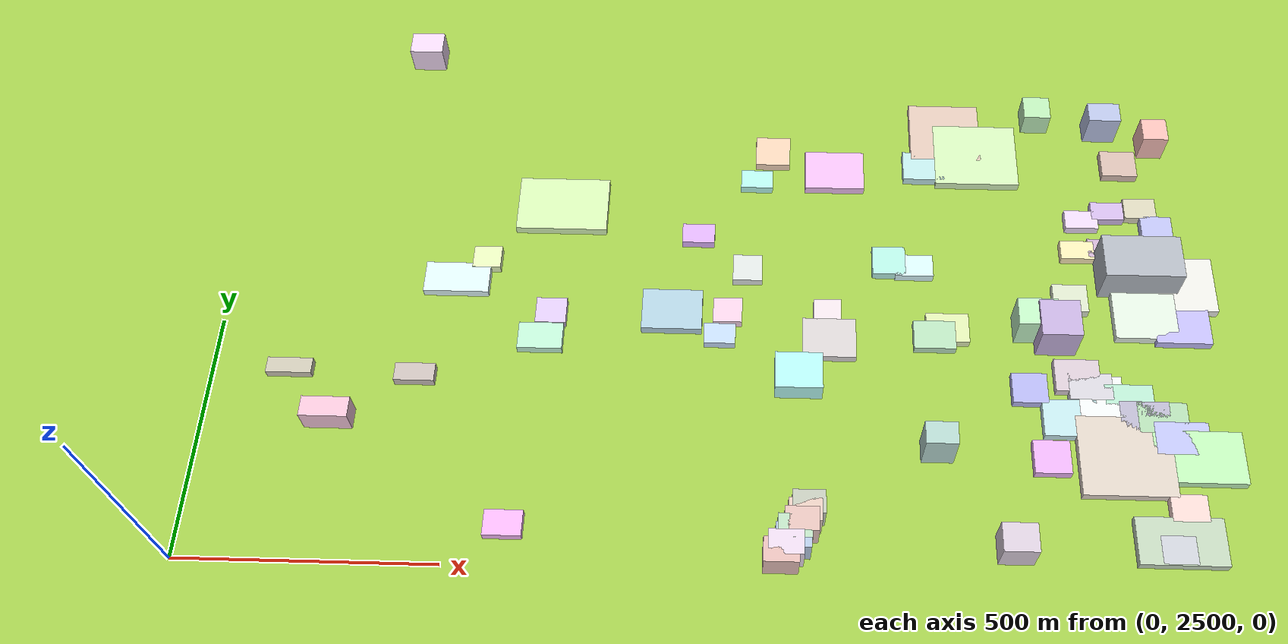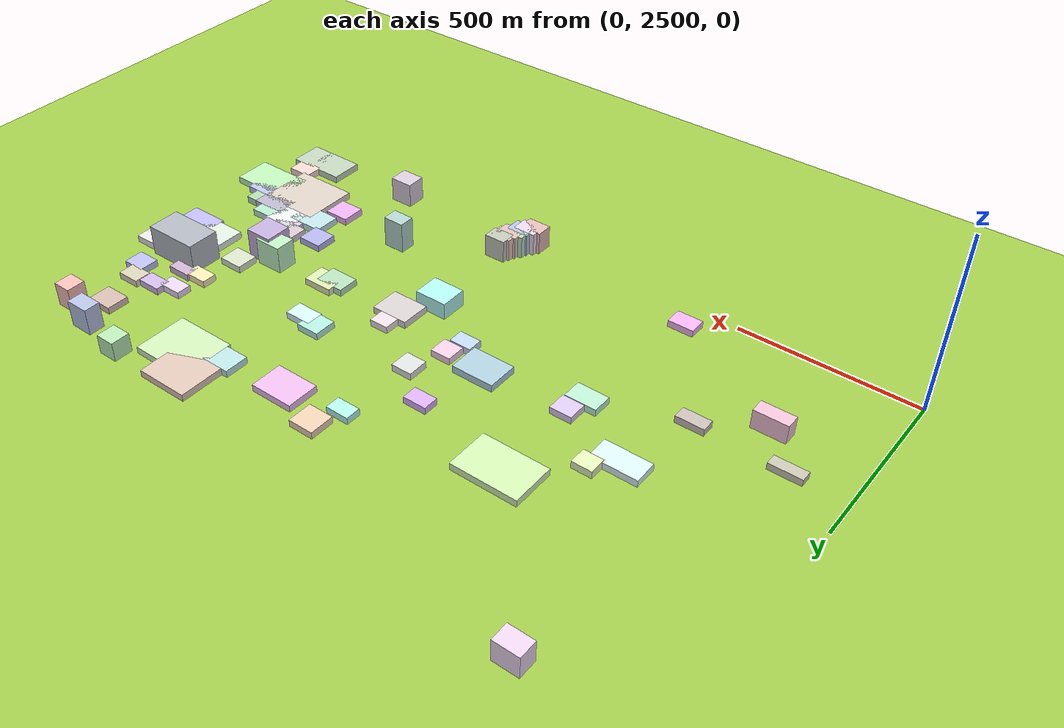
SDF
<sdf version="1.9">
 <world name="city_map">
  <model name="ground_plane">
   <static>1</static>
   <link name="link">
    <collision name="collision">
     <geometry><plane><normal>0 0 1</normal><size>11000 11000</size></plane></geometry>
    </collision>
    <visual name="visual">
     <geometry><plane><normal>0 0 1</normal><size>11000 11000</size></plane></geometry>
     <material>
      <ambient>0.551 0.712 0.210 1</ambient>
      <diffuse>0.651 0.812 0.310 1</diffuse>
      <specular>0.1 0.1 0.05 1</specular>
     </material>
    </visual>
   </link>
  </model>
  <model name="building_296393266">
   <static>1</static>
   <pose>1785.0916881172025 2744.9662166609846 10.0 0 0 0</pose>
   <link name="link">
    <collision name="collision">
     <geometry><box><size>181.3217300226623 163.61400000019444 20</size></box></geometry>
    </collision>
    <visual name="visual">
     <cast_shadows>false</cast_shadows>
     <geometry><box><size>181.3217300226623 163.61400000019444 20</size></box></geometry>
     <material>
      <ambient>0.780 0.733 0.687 1</ambient>
      <diffuse>0.880 0.833 0.787 1</diffuse>
      <specular>0.264 0.250 0.236 1</specular>
      <emissive>0.01 0.01 0.01 1</emissive>
     </material>
    </visual>
   </link>
  </model>
  <model name="building_847208884">
   <static>1</static>
   <pose>1540.7432542702056 3440.817177242946 10.0 0 0 0</pose>
   <link name="link">
    <collision name="collision">
     <geometry><box><size>176.17920000033394 151.10614218380107 20</size></box></geometry>
    </collision>
    <visual name="visual">
     <cast_shadows>false</cast_shadows>
     <geometry><box><size>176.17920000033394 151.10614218380107 20</size></box></geometry>
     <material>
      <ambient>0.738 0.854 0.643 1</ambient>
      <diffuse>0.838 0.954 0.743 1</diffuse>
      <specular>0.251 0.286 0.223 1</specular>
      <emissive>0.01 0.01 0.01 1</emissive>
     </material>
    </visual>
   </link>
  </model>
  <model name="building_385283953">
   <static>1</static>
   <pose>665.1022493785597 3291.2420328187886 10.0 0 0 0</pose>
   <link name="link">
    <collision name="collision">
     <geometry><box><size>189.01028402953102 125.65199999981758 20</size></box></geometry>
    </collision>
    <visual name="visual">
     <cast_shadows>false</cast_shadows>
     <geometry><box><size>189.01028402953102 125.65199999981758 20</size></box></geometry>
     <material>
      <ambient>0.747 0.871 0.620 1</ambient>
      <diffuse>0.847 0.971 0.720 1</diffuse>
      <specular>0.254 0.291 0.216 1</specular>
      <emissive>0.01 0.01 0.01 1</emissive>
     </material>
    </visual>
   </link>
  </model>
  <model name="building_456320515">
   <static>1</static>
   <pose>1477.459520917237 3498.7542710292914 10.0 0 0 0</pose>
   <link name="link">
    <collision name="collision">
     <geometry><box><size>149.31720000032556 142.5058160902983 20</size></box></geometry>
    </collision>
    <visual name="visual">
     <cast_shadows>false</cast_shadows>
     <geometry><box><size>149.31720000032556 142.5058160902983 20</size></box></geometry>
     <material>
      <ambient>0.789 0.693 0.636 1</ambient>
      <diffuse>0.889 0.793 0.736 1</diffuse>
      <specular>0.267 0.238 0.221 1</specular>
      <emissive>0.01 0.01 0.01 1</emissive>
     </material>
    </visual>
   </link>
  </model>
  <model name="building_67063489">
   <static>1</static>
   <pose>1925.413212388208 2746.544340099857 10.0 0 0 0</pose>
   <link name="link">
    <collision name="collision">
     <geometry><box><size>172.04999999940185 107.49294339276533 20</size></box></geometry>
    </collision>
    <visual name="visual">
     <cast_shadows>false</cast_shadows>
     <geometry><box><size>172.04999999940185 107.49294339276533 20</size></box></geometry>
     <material>
      <ambient>0.661 0.862 0.635 1</ambient>
      <diffuse>0.761 0.962 0.735 1</diffuse>
      <specular>0.228 0.289 0.221 1</specular>
      <emissive>0.01 0.01 0.01 1</emissive>
     </material>
    </visual>
   </link>
  </model>
  <model name="building_512868299">
   <static>1</static>
   <pose>1939.9955426923825 3128.0776465128956 10.0 0 0 0</pose>
   <link name="link">
    <collision name="collision">
     <geometry><box><size>136.85959593170364 123.98700000007778 20</size></box></geometry>
    </collision>
    <visual name="visual">
     <cast_shadows>false</cast_shadows>
     <geometry><box><size>136.85959593170364 123.98700000007778 20</size></box></geometry>
     <material>
      <ambient>0.826 0.826 0.806 1</ambient>
      <diffuse>0.926 0.926 0.906 1</diffuse>
      <specular>0.278 0.278 0.272 1</specular>
      <emissive>0.01 0.01 0.01 1</emissive>
     </material>
    </visual>
   </link>
  </model>
  <model name="building_357012629">
   <static>1</static>
   <pose>1867.3848195295602 2576.415230217471 10.0 0 0 0</pose>
   <link name="link">
    <collision name="collision">
     <geometry><box><size>166.82800125652534 93.36210000026313 20</size></box></geometry>
    </collision>
    <visual name="visual">
     <cast_shadows>false</cast_shadows>
     <geometry><box><size>166.82800125652534 93.36210000026313 20</size></box></geometry>
     <material>
      <ambient>0.671 0.742 0.647 1</ambient>
      <diffuse>0.771 0.842 0.747 1</diffuse>
      <specular>0.231 0.253 0.224 1</specular>
      <emissive>0.01 0.01 0.01 1</emissive>
     </material>
    </visual>
   </link>
  </model>
  <model name="building_257164520">
   <static>1</static>
   <pose>1850.4719773773763 3152.9131212958127 43.80219868071017 0 0 0</pose>
   <link name="link">
    <collision name="collision">
     <geometry><box><size>158.9297999998749 93.81575194738255 87.60439736142034</size></box></geometry>
    </collision>
    <visual name="visual">
     <cast_shadows>false</cast_shadows>
     <geometry><box><size>158.9297999998749 93.81575194738255 87.60439736142034</size></box></geometry>
     <material>
      <ambient>0.609 0.631 0.665 1</ambient>
      <diffuse>0.709 0.731 0.765 1</diffuse>
      <specular>0.213 0.219 0.229 1</specular>
      <emissive>0.01 0.01 0.01 1</emissive>
     </material>
    </visual>
   </link>
  </model>
  <model name="building_770897430">
   <static>1</static>
   <pose>1857.8637811220988 3052.8553872786238 10.0 0 0 0</pose>
   <link name="link">
    <collision name="collision">
     <geometry><box><size>126.48450000008182 104.20581152705896 20</size></box></geometry>
    </collision>
    <visual name="visual">
     <cast_shadows>false</cast_shadows>
     <geometry><box><size>126.48450000008182 104.20581152705896 20</size></box></geometry>
     <material>
      <ambient>0.792 0.846 0.786 1</ambient>
      <diffuse>0.892 0.946 0.886 1</diffuse>
      <specular>0.268 0.284 0.266 1</specular>
      <emissive>0.01 0.01 0.01 1</emissive>
     </material>
    </visual>
   </link>
  </model>
  <model name="building_947213936">
   <static>1</static>
   <pose>1237.5039658086473 3392.6713652474423 10.0 0 0 0</pose>
   <link name="link">
    <collision name="collision">
     <geometry><box><size>124.48649999960537 92.88657761622274 20</size></box></geometry>
    </collision>
    <visual name="visual">
     <cast_shadows>false</cast_shadows>
     <geometry><box><size>124.48649999960537 92.88657761622274 20</size></box></geometry>
     <material>
      <ambient>0.849 0.661 0.852 1</ambient>
      <diffuse>0.949 0.761 0.952 1</diffuse>
      <specular>0.285 0.228 0.286 1</specular>
      <emissive>0.01 0.01 0.01 1</emissive>
     </material>
    </visual>
   </link>
  </model>
  <model name="building_107565523">
   <static>1</static>
   <pose>905.4014284508712 3042.002565570818 10.5 0 0 0</pose>
   <link name="link">
    <collision name="collision">
     <geometry><box><size>121.6004999997935 90.16590141064847 21.0</size></box></geometry>
    </collision>
    <visual name="visual">
     <cast_shadows>false</cast_shadows>
     <geometry><box><size>121.6004999997935 90.16590141064847 21.0</size></box></geometry>
     <material>
      <ambient>0.601 0.725 0.785 1</ambient>
      <diffuse>0.701 0.825 0.885 1</diffuse>
      <specular>0.210 0.248 0.265 1</specular>
      <emissive>0.01 0.01 0.01 1</emissive>
     </material>
    </visual>
   </link>
  </model>
  <model name="building_626748838">
   <static>1</static>
   <pose>1930.405935699945 3038.787131423999 10.0 0 0 0</pose>
   <link name="link">
    <collision name="collision">
     <geometry><box><size>110.98889999961159 94.21642407130211 20</size></box></geometry>
    </collision>
    <visual name="visual">
     <cast_shadows>false</cast_shadows>
     <geometry><box><size>110.98889999961159 94.21642407130211 20</size></box></geometry>
     <material>
      <ambient>0.668 0.646 0.889 1</ambient>
      <diffuse>0.768 0.746 0.989 1</diffuse>
      <specular>0.230 0.224 0.297 1</specular>
      <emissive>0.01 0.01 0.01 1</emissive>
     </material>
    </visual>
   </link>
  </model>
  <model name="building_812882112">
   <static>1</static>
   <pose>1221.8708107534674 2985.55508494089 10.0 0 0 0</pose>
   <link name="link">
    <collision name="collision">
     <geometry><box><size>106.61043597506729 86.0804999995608 20</size></box></geometry>
    </collision>
    <visual name="visual">
     <cast_shadows>false</cast_shadows>
     <geometry><box><size>106.61043597506729 86.0804999995608 20</size></box></geometry>
     <material>
      <ambient>0.759 0.736 0.734 1</ambient>
      <diffuse>0.859 0.836 0.834 1</diffuse>
      <specular>0.258 0.251 0.250 1</specular>
      <emissive>0.01 0.01 0.01 1</emissive>
     </material>
    </visual>
   </link>
  </model>
  <model name="building_880753315">
   <static>1</static>
   <pose>462.8261259873555 3106.202477084088 10.0 0 0 0</pose>
   <link name="link">
    <collision name="collision">
     <geometry><box><size>132.72969879933294 67.64340000020752 20</size></box></geometry>
    </collision>
    <visual name="visual">
     <cast_shadows>false</cast_shadows>
     <geometry><box><size>132.72969879933294 67.64340000020752 20</size></box></geometry>
     <material>
      <ambient>0.780 0.879 0.879 1</ambient>
      <diffuse>0.880 0.979 0.979 1</diffuse>
      <specular>0.264 0.294 0.294 1</specular>
      <emissive>0.01 0.01 0.01 1</emissive>
     </material>
    </visual>
   </link>
  </model>
  <model name="building_670263889">
   <static>1</static>
   <pose>1686.315787418773 2821.9276726075486 10.0 0 0 0</pose>
   <link name="link">
    <collision name="collision">
     <geometry><box><size>106.10490000011197 77.16911199341574 20</size></box></geometry>
    </collision>
    <visual name="visual">
     <cast_shadows>false</cast_shadows>
     <geometry><box><size>106.10490000011197 77.16911199341574 20</size></box></geometry>
     <material>
      <ambient>0.675 0.810 0.828 1</ambient>
      <diffuse>0.775 0.910 0.928 1</diffuse>
      <specular>0.233 0.273 0.278 1</specular>
      <emissive>0.01 0.01 0.01 1</emissive>
     </material>
    </visual>
   </link>
  </model>
  <model name="building_559086533">
   <static>1</static>
   <pose>1749.6081128139447 2869.567103321095 10.0 0 0 0</pose>
   <link name="link">
    <collision name="collision">
     <geometry><box><size>86.90189999969533 86.01083006401988 20</size></box></geometry>
    </collision>
    <visual name="visual">
     <cast_shadows>false</cast_shadows>
     <geometry><box><size>86.90189999969533 86.01083006401988 20</size></box></geometry>
     <material>
      <ambient>0.840 0.855 0.852 1</ambient>
      <diffuse>0.940 0.955 0.952 1</diffuse>
      <specular>0.282 0.286 0.286 1</specular>
      <emissive>0.01 0.01 0.01 1</emissive>
     </material>
    </visual>
   </link>
  </model>
  <model name="building_594401627">
   <static>1</static>
   <pose>1160.060412376207 2897.6820287699916 24.0 0 0 0</pose>
   <link name="link">
    <collision name="collision">
     <geometry><box><size>93.68571711656891 77.13389999990738 48.0</size></box></geometry>
    </collision>
    <visual name="visual">
     <cast_shadows>false</cast_shadows>
     <geometry><box><size>93.68571711656891 77.13389999990738 48.0</size></box></geometry>
     <material>
      <ambient>0.614 0.882 0.853 1</ambient>
      <diffuse>0.714 0.982 0.953 1</diffuse>
      <specular>0.214 0.295 0.286 1</specular>
      <emissive>0.01 0.01 0.01 1</emissive>
     </material>
    </visual>
   </link>
  </model>
  <model name="building_162537487">
   <static>1</static>
   <pose>1897.5984046104968 2784.6134058362036 10.0 0 0 0</pose>
   <link name="link">
    <collision name="collision">
     <geometry><box><size>105.29460000010715 67.53676781060857 20</size></box></geometry>
    </collision>
    <visual name="visual">
     <cast_shadows>false</cast_shadows>
     <geometry><box><size>105.29460000010715 67.53676781060857 20</size></box></geometry>
     <material>
      <ambient>0.659 0.680 0.859 1</ambient>
      <diffuse>0.759 0.780 0.959 1</diffuse>
      <specular>0.228 0.234 0.288 1</specular>
      <emissive>0.01 0.01 0.01 1</emissive>
     </material>
    </visual>
   </link>
  </model>
  <model name="building_279028456">
   <static>1</static>
   <pose>1831.3576110448655 2828.373922117123 10.0 0 0 0</pose>
   <link name="link">
    <collision name="collision">
     <geometry><box><size>96.92520000010063 64.39729699498561 20</size></box></geometry>
    </collision>
    <visual name="visual">
     <cast_shadows>false</cast_shadows>
     <geometry><box><size>96.92520000010063 64.39729699498561 20</size></box></geometry>
     <material>
      <ambient>0.639 0.626 0.713 1</ambient>
      <diffuse>0.739 0.726 0.813 1</diffuse>
      <specular>0.222 0.218 0.244 1</specular>
      <emissive>0.01 0.01 0.01 1</emissive>
     </material>
    </visual>
   </link>
  </model>
  <model name="building_936680155">
   <static>1</static>
   <pose>1672.3290210044142 3006.9698079849604 43.334548522265216 0 0 0</pose>
   <link name="link">
    <collision name="collision">
     <geometry><box><size>79.99769999945983 77.8007678972665 86.66909704453043</size></box></geometry>
    </collision>
    <visual name="visual">
     <cast_shadows>false</cast_shadows>
     <geometry><box><size>79.99769999945983 77.8007678972665 86.66909704453043</size></box></geometry>
     <material>
      <ambient>0.678 0.600 0.773 1</ambient>
      <diffuse>0.778 0.700 0.873 1</diffuse>
      <specular>0.233 0.210 0.262 1</specular>
      <emissive>0.01 0.01 0.01 1</emissive>
     </material>
    </visual>
   </link>
  </model>
  <model name="building_679379596">
   <static>1</static>
   <pose>1865.4096537313858 2827.560778328828 10.0 0 0 0</pose>
   <link name="link">
    <collision name="collision">
     <geometry><box><size>97.3359000001679 63.74948571386098 20</size></box></geometry>
    </collision>
    <visual name="visual">
     <cast_shadows>false</cast_shadows>
     <geometry><box><size>97.3359000001679 63.74948571386098 20</size></box></geometry>
     <material>
      <ambient>0.613 0.767 0.611 1</ambient>
      <diffuse>0.713 0.867 0.711 1</diffuse>
      <specular>0.214 0.260 0.213 1</specular>
      <emissive>0.01 0.01 0.01 1</emissive>
     </material>
    </visual>
   </link>
  </model>
  <model name="building_707031238">
   <static>1</static>
   <pose>1708.2642026285127 2914.4875975586756 10.0 0 0 0</pose>
   <link name="link">
    <collision name="collision">
     <geometry><box><size>88.71119999954402 69.56681250462657 20</size></box></geometry>
    </collision>
    <visual name="visual">
     <cast_shadows>false</cast_shadows>
     <geometry><box><size>88.71119999954402 69.56681250462657 20</size></box></geometry>
     <material>
      <ambient>0.759 0.699 0.740 1</ambient>
      <diffuse>0.859 0.799 0.840 1</diffuse>
      <specular>0.258 0.240 0.252 1</specular>
      <emissive>0.01 0.01 0.01 1</emissive>
     </material>
    </visual>
   </link>
  </model>
  <model name="building_91126231">
   <static>1</static>
   <pose>1427.9102335072625 3409.1490834796336 10.0 0 0 0</pose>
   <link name="link">
    <collision name="collision">
     <geometry><box><size>86.64296485938291 69.21959999969829 20</size></box></geometry>
    </collision>
    <visual name="visual">
     <cast_shadows>false</cast_shadows>
     <geometry><box><size>86.64296485938291 69.21959999969829 20</size></box></geometry>
     <material>
      <ambient>0.660 0.812 0.812 1</ambient>
      <diffuse>0.760 0.912 0.912 1</diffuse>
      <specular>0.228 0.273 0.274 1</specular>
      <emissive>0.01 0.01 0.01 1</emissive>
     </material>
    </visual>
   </link>
  </model>
  <model name="building_137741192">
   <static>1</static>
   <pose>1805.1448362875242 2865.199448418897 10.0 0 0 0</pose>
   <link name="link">
    <collision name="collision">
     <geometry><box><size>94.29450000011741 62.09517140509971 20</size></box></geometry>
    </collision>
    <visual name="visual">
     <cast_shadows>false</cast_shadows>
     <geometry><box><size>94.29450000011741 62.09517140509971 20</size></box></geometry>
     <material>
      <ambient>0.634 0.820 0.726 1</ambient>
      <diffuse>0.734 0.920 0.826 1</diffuse>
      <specular>0.220 0.276 0.248 1</specular>
      <emissive>0.01 0.01 0.01 1</emissive>
     </material>
    </visual>
   </link>
  </model>
  <model name="building_994667774">
   <static>1</static>
   <pose>1459.1367895319327 3014.867758587955 10.0 0 0 0</pose>
   <link name="link">
    <collision name="collision">
     <geometry><box><size>85.46182989227424 63.83609999988238 20</size></box></geometry>
    </collision>
    <visual name="visual">
     <cast_shadows>false</cast_shadows>
     <geometry><box><size>85.46182989227424 63.83609999988238 20</size></box></geometry>
     <material>
      <ambient>0.783 0.836 0.611 1</ambient>
      <diffuse>0.883 0.936 0.711 1</diffuse>
      <specular>0.265 0.281 0.213 1</specular>
      <emissive>0.01 0.01 0.01 1</emissive>
     </material>
    </visual>
   </link>
  </model>
  <model name="building_896159549">
   <static>1</static>
   <pose>1432.4007887614755 2998.200234770752 10.0 0 0 0</pose>
   <link name="link">
    <collision name="collision">
     <geometry><box><size>83.53841337048244 62.16000000001287 20</size></box></geometry>
    </collision>
    <visual name="visual">
     <cast_shadows>false</cast_shadows>
     <geometry><box><size>83.53841337048244 62.16000000001287 20</size></box></geometry>
     <material>
      <ambient>0.633 0.790 0.652 1</ambient>
      <diffuse>0.733 0.890 0.752 1</diffuse>
      <specular>0.220 0.267 0.226 1</specular>
      <emissive>0.01 0.01 0.01 1</emissive>
     </material>
    </visual>
   </link>
  </model>
  <model name="building_620189476">
   <static>1</static>
   <pose>644.4847508799357 2975.202270910994 10.0 0 0 0</pose>
   <link name="link">
    <collision name="collision">
     <geometry><box><size>89.49930000007811 57.699730316512905 20</size></box></geometry>
    </collision>
    <visual name="visual">
     <cast_shadows>false</cast_shadows>
     <geometry><box><size>89.49930000007811 57.699730316512905 20</size></box></geometry>
     <material>
      <ambient>0.662 0.854 0.745 1</ambient>
      <diffuse>0.762 0.954 0.845 1</diffuse>
      <specular>0.229 0.286 0.253 1</specular>
      <emissive>0.01 0.01 0.01 1</emissive>
     </material>
    </visual>
   </link>
  </model>
  <model name="building_235462205">
   <static>1</static>
   <pose>1106.1897781785894 3438.761086693925 10.0 0 0 0</pose>
   <link name="link">
    <collision name="collision">
     <geometry><box><size>72.19851875499194 70.6071000001387 20</size></box></geometry>
    </collision>
    <visual name="visual">
     <cast_shadows>false</cast_shadows>
     <geometry><box><size>72.19851875499194 70.6071000001387 20</size></box></geometry>
     <material>
      <ambient>0.858 0.740 0.632 1</ambient>
      <diffuse>0.958 0.840 0.732 1</diffuse>
      <specular>0.287 0.252 0.220 1</specular>
      <emissive>0.01 0.01 0.01 1</emissive>
     </material>
    </visual>
   </link>
  </model>
  <model name="building_883458194">
   <static>1</static>
   <pose>1643.7535229497166 2739.379324909252 10.0 0 0 0</pose>
   <link name="link">
    <collision name="collision">
     <geometry><box><size>71.06131098779672 68.08740000066393 20</size></box></geometry>
    </collision>
    <visual name="visual">
     <cast_shadows>false</cast_shadows>
     <geometry><box><size>71.06131098779672 68.08740000066393 20</size></box></geometry>
     <material>
      <ambient>0.829 0.611 0.857 1</ambient>
      <diffuse>0.929 0.711 0.957 1</diffuse>
      <specular>0.279 0.213 0.287 1</specular>
      <emissive>0.01 0.01 0.01 1</emissive>
     </material>
    </visual>
   </link>
  </model>
  <model name="building_113838910">
   <static>1</static>
   <pose>1731.8937531360982 2890.9701556875975 10.0 0 0 0</pose>
   <link name="link">
    <collision name="collision">
     <geometry><box><size>85.31460000007485 56.39076986164096 20</size></box></geometry>
    </collision>
    <visual name="visual">
     <cast_shadows>false</cast_shadows>
     <geometry><box><size>85.31460000007485 56.39076986164096 20</size></box></geometry>
     <material>
      <ambient>0.747 0.740 0.770 1</ambient>
      <diffuse>0.847 0.840 0.870 1</diffuse>
      <specular>0.254 0.252 0.261 1</specular>
      <emissive>0.01 0.01 0.01 1</emissive>
     </material>
    </visual>
   </link>
  </model>
  <model name="building_62969708">
   <static>1</static>
   <pose>1631.543775335795 3024.2753381500575 39.17652475926107 0 0 0</pose>
   <link name="link">
    <collision name="collision">
     <geometry><box><size>80.46390000017567 58.52933018581296 78.35304951852214</size></box></geometry>
    </collision>
    <visual name="visual">
     <cast_shadows>false</cast_shadows>
     <geometry><box><size>80.46390000017567 58.52933018581296 78.35304951852214</size></box></geometry>
     <material>
      <ambient>0.663 0.856 0.679 1</ambient>
      <diffuse>0.763 0.956 0.779 1</diffuse>
      <specular>0.229 0.287 0.234 1</specular>
      <emissive>0.01 0.01 0.01 1</emissive>
     </material>
    </visual>
   </link>
  </model>
  <model name="building_21750506">
   <static>1</static>
   <pose>1846.4469053480584 3426.2914117239593 10.0 0 0 0</pose>
   <link name="link">
    <collision name="collision">
     <geometry><box><size>74.14799999971677 63.194992911077506 20</size></box></geometry>
    </collision>
    <visual name="visual">
     <cast_shadows>false</cast_shadows>
     <geometry><box><size>74.14799999971677 63.194992911077506 20</size></box></geometry>
     <material>
      <ambient>0.749 0.647 0.603 1</ambient>
      <diffuse>0.849 0.747 0.703 1</diffuse>
      <specular>0.255 0.224 0.211 1</specular>
      <emissive>0.01 0.01 0.01 1</emissive>
     </material>
    </visual>
   </link>
  </model>
  <model name="building_70878495">
   <static>1</static>
   <pose>1612.8611819501407 2884.5218885774652 10.0 0 0 0</pose>
   <link name="link">
    <collision name="collision">
     <geometry><box><size>69.57479999990568 64.01888867936054 20</size></box></geometry>
    </collision>
    <visual name="visual">
     <cast_shadows>false</cast_shadows>
     <geometry><box><size>69.57479999990568 64.01888867936054 20</size></box></geometry>
     <material>
      <ambient>0.616 0.622 0.839 1</ambient>
      <diffuse>0.716 0.722 0.939 1</diffuse>
      <specular>0.215 0.217 0.282 1</specular>
      <emissive>0.01 0.01 0.01 1</emissive>
     </material>
    </visual>
   </link>
  </model>
  <model name="building_328337026">
   <static>1</static>
   <pose>1711.3661305122935 3089.988403531334 10.0 0 0 0</pose>
   <link name="link">
    <collision name="collision">
     <geometry><box><size>70.14499003904238 62.293199999992055 20</size></box></geometry>
    </collision>
    <visual name="visual">
     <cast_shadows>false</cast_shadows>
     <geometry><box><size>70.14499003904238 62.293199999992055 20</size></box></geometry>
     <material>
      <ambient>0.764 0.803 0.703 1</ambient>
      <diffuse>0.864 0.903 0.803 1</diffuse>
      <specular>0.259 0.271 0.241 1</specular>
      <emissive>0.01 0.01 0.01 1</emissive>
     </material>
    </visual>
   </link>
  </model>
  <model name="building_988547182">
   <static>1</static>
   <pose>1346.2499493095033 3169.395665845286 10.0 0 0 0</pose>
   <link name="link">
    <collision name="collision">
     <geometry><box><size>67.09968337334526 64.73520000013622 20</size></box></geometry>
    </collision>
    <visual name="visual">
     <cast_shadows>false</cast_shadows>
     <geometry><box><size>67.09968337334526 64.73520000013622 20</size></box></geometry>
     <material>
      <ambient>0.621 0.848 0.795 1</ambient>
      <diffuse>0.721 0.948 0.895 1</diffuse>
      <specular>0.216 0.284 0.269 1</specular>
      <emissive>0.01 0.01 0.01 1</emissive>
     </material>
    </visual>
   </link>
  </model>
  <model name="building_754012407">
   <static>1</static>
   <pose>249.5878828571254 2790.82771963644 27.59056693861886 0 0 0</pose>
   <link name="link">
    <collision name="collision">
     <geometry><box><size>93.93929999991002 41.38619608267851 55.18113387723772</size></box></geometry>
    </collision>
    <visual name="visual">
     <cast_shadows>false</cast_shadows>
     <geometry><box><size>93.93929999991002 41.38619608267851 55.18113387723772</size></box></geometry>
     <material>
      <ambient>0.860 0.682 0.756 1</ambient>
      <diffuse>0.960 0.782 0.856 1</diffuse>
      <specular>0.288 0.235 0.257 1</specular>
      <emissive>0.01 0.01 0.01 1</emissive>
     </material>
    </visual>
   </link>
  </model>
  <model name="building_693369271">
   <static>1</static>
   <pose>1397.8248439507788 3158.649343353553 10.0 0 0 0</pose>
   <link name="link">
    <collision name="collision">
     <geometry><box><size>77.5112999995855 49.73253813278504 20</size></box></geometry>
    </collision>
    <visual name="visual">
     <cast_shadows>false</cast_shadows>
     <geometry><box><size>77.5112999995855 49.73253813278504 20</size></box></geometry>
     <material>
      <ambient>0.753 0.877 0.896 1</ambient>
      <diffuse>0.853 0.977 0.996 1</diffuse>
      <specular>0.256 0.293 0.299 1</specular>
      <emissive>0.01 0.01 0.01 1</emissive>
     </material>
    </visual>
   </link>
  </model>
  <model name="building_258558852">
   <static>1</static>
   <pose>1891.1486963537893 2642.0488102461104 10.0 0 0 0</pose>
   <link name="link">
    <collision name="collision">
     <geometry><box><size>69.82064827478949 53.95709999958598 20</size></box></geometry>
    </collision>
    <visual name="visual">
     <cast_shadows>false</cast_shadows>
     <geometry><box><size>69.82064827478949 53.95709999958598 20</size></box></geometry>
     <material>
      <ambient>0.899 0.755 0.734 1</ambient>
      <diffuse>0.999 0.855 0.834 1</diffuse>
      <specular>0.300 0.257 0.250 1</specular>
      <emissive>0.01 0.01 0.01 1</emissive>
     </material>
    </visual>
   </link>
  </model>
  <model name="building_927034759">
   <static>1</static>
   <pose>610.2167794133242 2578.8152041572453 10.0 0 0 0</pose>
   <link name="link">
    <collision name="collision">
     <geometry><box><size>73.59523085564706 50.715899999566716 20</size></box></geometry>
    </collision>
    <visual name="visual">
     <cast_shadows>false</cast_shadows>
     <geometry><box><size>73.59523085564706 50.715899999566716 20</size></box></geometry>
     <material>
      <ambient>0.875 0.623 0.873 1</ambient>
      <diffuse>0.975 0.723 0.973 1</diffuse>
      <specular>0.293 0.217 0.292 1</specular>
      <emissive>0.01 0.01 0.01 1</emissive>
     </material>
    </visual>
   </link>
  </model>
  <model name="building_272923583">
   <static>1</static>
   <pose>1560.5586319375345 2557.3007997728664 35.4964213979017 0 0 0</pose>
   <link name="link">
    <collision name="collision">
     <geometry><box><size>66.86639999980315 55.739977299580815 70.9928427958034</size></box></geometry>
    </collision>
    <visual name="visual">
     <cast_shadows>false</cast_shadows>
     <geometry><box><size>66.86639999980315 55.739977299580815 70.9928427958034</size></box></geometry>
     <material>
      <ambient>0.761 0.711 0.769 1</ambient>
      <diffuse>0.861 0.811 0.869 1</diffuse>
      <specular>0.258 0.243 0.261 1</specular>
      <emissive>0.01 0.01 0.01 1</emissive>
     </material>
    </visual>
   </link>
  </model>
  <model name="building_42831424">
   <static>1</static>
   <pose>333.2154096388209 3684.147480464145 31.5 0 0 0</pose>
   <link name="link">
    <collision name="collision">
     <geometry><box><size>70.67370000012829 51.94771054359465 63.0</size></box></geometry>
    </collision>
    <visual name="visual">
     <cast_shadows>false</cast_shadows>
     <geometry><box><size>70.67370000012829 51.94771054359465 63.0</size></box></geometry>
     <material>
      <ambient>0.851 0.758 0.860 1</ambient>
      <diffuse>0.951 0.858 0.960 1</diffuse>
      <specular>0.285 0.257 0.288 1</specular>
      <emissive>0.01 0.01 0.01 1</emissive>
     </material>
    </visual>
   </link>
  </model>
  <model name="building_487541333">
   <static>1</static>
   <pose>1907.622180712951 3263.86260803987 10.0 0 0 0</pose>
   <link name="link">
    <collision name="collision">
     <geometry><box><size>64.34669999953968 55.981705089705784 20</size></box></geometry>
    </collision>
    <visual name="visual">
     <cast_shadows>false</cast_shadows>
     <geometry><box><size>64.34669999953968 55.981705089705784 20</size></box></geometry>
     <material>
      <ambient>0.650 0.663 0.843 1</ambient>
      <diffuse>0.750 0.763 0.943 1</diffuse>
      <specular>0.225 0.229 0.283 1</specular>
      <emissive>0.01 0.01 0.01 1</emissive>
     </material>
    </visual>
   </link>
  </model>
  <model name="building_542797878">
   <static>1</static>
   <pose>1860.5929110234752 2559.401930740536 10.0 0 0 0</pose>
   <link name="link">
    <collision name="collision">
     <geometry><box><size>65.22466981571826 54.92280000061811 20</size></box></geometry>
    </collision>
    <visual name="visual">
     <cast_shadows>false</cast_shadows>
     <geometry><box><size>65.22466981571826 54.92280000061811 20</size></box></geometry>
     <material>
      <ambient>0.708 0.721 0.752 1</ambient>
      <diffuse>0.808 0.821 0.852 1</diffuse>
      <specular>0.242 0.246 0.255 1</specular>
      <emissive>0.01 0.01 0.01 1</emissive>
     </material>
    </visual>
   </link>
  </model>
  <model name="building_653457663">
   <static>1</static>
   <pose>1056.2742693076646 3144.2376283661874 10.0 0 0 0</pose>
   <link name="link">
    <collision name="collision">
     <geometry><box><size>59.88449999944834 59.688739742434805 20</size></box></geometry>
    </collision>
    <visual name="visual">
     <cast_shadows>false</cast_shadows>
     <geometry><box><size>59.88449999944834 59.688739742434805 20</size></box></geometry>
     <material>
      <ambient>0.781 0.800 0.794 1</ambient>
      <diffuse>0.881 0.900 0.894 1</diffuse>
      <specular>0.264 0.270 0.268 1</specular>
      <emissive>0.01 0.01 0.01 1</emissive>
     </material>
    </visual>
   </link>
  </model>
  <model name="building_302749378">
   <static>1</static>
   <pose>661.4113849241264 3033.533256673957 10.0 0 0 0</pose>
   <link name="link">
    <collision name="collision">
     <geometry><box><size>61.99868746330047 55.84410000034268 20</size></box></geometry>
    </collision>
    <visual name="visual">
     <cast_shadows>false</cast_shadows>
     <geometry><box><size>61.99868746330047 55.84410000034268 20</size></box></geometry>
     <material>
      <ambient>0.785 0.706 0.856 1</ambient>
      <diffuse>0.885 0.806 0.956 1</diffuse>
      <specular>0.266 0.242 0.287 1</specular>
      <emissive>0.01 0.01 0.01 1</emissive>
     </material>
    </visual>
   </link>
  </model>
  <model name="building_53292495">
   <static>1</static>
   <pose>1017.5503894254196 3043.670898136651 10.0 0 0 0</pose>
   <link name="link">
    <collision name="collision">
     <geometry><box><size>58.333220198243666 54.87840000009925 20</size></box></geometry>
    </collision>
    <visual name="visual">
     <cast_shadows>false</cast_shadows>
     <geometry><box><size>58.333220198243666 54.87840000009925 20</size></box></geometry>
     <material>
      <ambient>0.874 0.731 0.808 1</ambient>
      <diffuse>0.974 0.831 0.908 1</diffuse>
      <specular>0.292 0.249 0.273 1</specular>
      <emissive>0.01 0.01 0.01 1</emissive>
     </material>
    </visual>
   </link>
  </model>
  <model name="building_942953000">
   <static>1</static>
   <pose>1877.9714805473593 3311.9964875702226 10.0 0 0 0</pose>
   <link name="link">
    <collision name="collision">
     <geometry><box><size>66.32829374157997 47.874300000273706 20</size></box></geometry>
    </collision>
    <visual name="visual">
     <cast_shadows>false</cast_shadows>
     <geometry><box><size>66.32829374157997 47.874300000273706 20</size></box></geometry>
     <material>
      <ambient>0.758 0.738 0.639 1</ambient>
      <diffuse>0.858 0.838 0.739 1</diffuse>
      <specular>0.257 0.251 0.222 1</specular>
      <emissive>0.01 0.01 0.01 1</emissive>
     </material>
    </visual>
   </link>
  </model>
  <model name="building_34472328">
   <static>1</static>
   <pose>1136.4460220012566 2539.3543699721868 33.0 0 0 0</pose>
   <link name="link">
    <collision name="collision">
     <geometry><box><size>65.93377157420872 47.63009999978607 66.0</size></box></geometry>
    </collision>
    <visual name="visual">
     <cast_shadows>false</cast_shadows>
     <geometry><box><size>65.93377157420872 47.63009999978607 66.0</size></box></geometry>
     <material>
      <ambient>0.823 0.756 0.830 1</ambient>
      <diffuse>0.923 0.856 0.930 1</diffuse>
      <specular>0.277 0.257 0.279 1</specular>
      <emissive>0.01 0.01 0.01 1</emissive>
     </material>
    </visual>
   </link>
  </model>
  <model name="building_703946616">
   <static>1</static>
   <pose>1127.0838174543983 2524.56287545111 33.0 0 0 0</pose>
   <link name="link">
    <collision name="collision">
     <geometry><box><size>65.90698097729576 47.48580000046587 66.0</size></box></geometry>
    </collision>
    <visual name="visual">
     <cast_shadows>false</cast_shadows>
     <geometry><box><size>65.90698097729576 47.48580000046587 66.0</size></box></geometry>
     <material>
      <ambient>0.801 0.649 0.629 1</ambient>
      <diffuse>0.901 0.749 0.729 1</diffuse>
      <specular>0.270 0.225 0.219 1</specular>
      <emissive>0.01 0.01 0.01 1</emissive>
     </material>
    </visual>
   </link>
  </model>
  <model name="building_789866397">
   <static>1</static>
   <pose>1149.3687325368655 2553.4441571144584 33.0 0 0 0</pose>
   <link name="link">
    <collision name="collision">
     <geometry><box><size>65.63652889596706 47.57459999992619 66.0</size></box></geometry>
    </collision>
    <visual name="visual">
     <cast_shadows>false</cast_shadows>
     <geometry><box><size>65.63652889596706 47.57459999992619 66.0</size></box></geometry>
     <material>
      <ambient>0.615 0.694 0.795 1</ambient>
      <diffuse>0.715 0.794 0.895 1</diffuse>
      <specular>0.214 0.238 0.269 1</specular>
      <emissive>0.01 0.01 0.01 1</emissive>
     </material>
    </visual>
   </link>
  </model>
  <model name="building_98347492">
   <static>1</static>
   <pose>1813.970771903026 3520.9657309644326 38.348780732145364 0 0 0</pose>
   <link name="link">
    <collision name="collision">
     <geometry><box><size>67.38809999959017 45.65905353482157 76.69756146429073</size></box></geometry>
    </collision>
    <visual name="visual">
     <cast_shadows>false</cast_shadows>
     <geometry><box><size>67.38809999959017 45.65905353482157 76.69756146429073</size></box></geometry>
     <material>
      <ambient>0.632 0.675 0.805 1</ambient>
      <diffuse>0.732 0.775 0.905 1</diffuse>
      <specular>0.220 0.233 0.271 1</specular>
      <emissive>0.01 0.01 0.01 1</emissive>
     </material>
    </visual>
   </link>
  </model>
  <model name="building_215723568">
   <static>1</static>
   <pose>1675.3678345764079 3545.7413051351596 27.77645783753464 0 0 0</pose>
   <link name="link">
    <collision name="collision">
     <geometry><box><size>56.38800000038913 53.87279445697145 55.55291567506928</size></box></geometry>
    </collision>
    <visual name="visual">
     <cast_shadows>false</cast_shadows>
     <geometry><box><size>56.38800000038913 53.87279445697145 55.55291567506928</size></box></geometry>
     <material>
      <ambient>0.646 0.832 0.631 1</ambient>
      <diffuse>0.746 0.932 0.731 1</diffuse>
      <specular>0.224 0.280 0.219 1</specular>
      <emissive>0.01 0.01 0.01 1</emissive>
     </material>
    </visual>
   </link>
  </model>
  <model name="building_624957550">
   <static>1</static>
   <pose>404.48280174577786 2886.8436121692935 10.5 0 0 0</pose>
   <link name="link">
    <collision name="collision">
     <geometry><box><size>79.61840172127627 37.917599999858 21.0</size></box></geometry>
    </collision>
    <visual name="visual">
     <cast_shadows>false</cast_shadows>
     <geometry><box><size>79.61840172127627 37.917599999858 21.0</size></box></geometry>
     <material>
      <ambient>0.701 0.655 0.637 1</ambient>
      <diffuse>0.801 0.755 0.737 1</diffuse>
      <specular>0.240 0.226 0.221 1</specular>
      <emissive>0.01 0.01 0.01 1</emissive>
     </material>
    </visual>
   </link>
  </model>
  <model name="building_962157735">
   <static>1</static>
   <pose>952.7848920849336 3225.082826407389 10.0 0 0 0</pose>
   <link name="link">
    <collision name="collision">
     <geometry><box><size>67.14613311460836 44.64420000038416 20</size></box></geometry>
    </collision>
    <visual name="visual">
     <cast_shadows>false</cast_shadows>
     <geometry><box><size>67.14613311460836 44.64420000038416 20</size></box></geometry>
     <material>
      <ambient>0.779 0.608 0.899 1</ambient>
      <diffuse>0.879 0.708 0.999 1</diffuse>
      <specular>0.264 0.213 0.300 1</specular>
      <emissive>0.01 0.01 0.01 1</emissive>
     </material>
    </visual>
   </link>
  </model>
  <model name="building_566388211">
   <static>1</static>
   <pose>1793.6483742418754 3211.596364406524 10.0 0 0 0</pose>
   <link name="link">
    <collision name="collision">
     <geometry><box><size>68.95319999973992 42.6920214784192 20</size></box></geometry>
    </collision>
    <visual name="visual">
     <cast_shadows>false</cast_shadows>
     <geometry><box><size>68.95319999973992 42.6920214784192 20</size></box></geometry>
     <material>
      <ambient>0.718 0.613 0.732 1</ambient>
      <diffuse>0.818 0.713 0.832 1</diffuse>
      <specular>0.245 0.214 0.250 1</specular>
      <emissive>0.01 0.01 0.01 1</emissive>
     </material>
    </visual>
   </link>
  </model>
  <model name="building_543624291">
   <static>1</static>
   <pose>1165.0303808491442 2585.117723093932 33.0 0 0 0</pose>
   <link name="link">
    <collision name="collision">
     <geometry><box><size>63.543411002886465 46.275899999734804 66.0</size></box></geometry>
    </collision>
    <visual name="visual">
     <cast_shadows>false</cast_shadows>
     <geometry><box><size>63.543411002886465 46.275899999734804 66.0</size></box></geometry>
     <material>
      <ambient>0.795 0.666 0.639 1</ambient>
      <diffuse>0.895 0.766 0.739 1</diffuse>
      <specular>0.268 0.230 0.222 1</specular>
      <emissive>0.01 0.01 0.01 1</emissive>
     </material>
    </visual>
   </link>
  </model>
  <model name="building_396828223">
   <static>1</static>
   <pose>1752.4637242123022 3281.093564208306 10.0 0 0 0</pose>
   <link name="link">
    <collision name="collision">
     <geometry><box><size>68.46161182215293 42.934800000125506 20</size></box></geometry>
    </collision>
    <visual name="visual">
     <cast_shadows>false</cast_shadows>
     <geometry><box><size>68.46161182215293 42.934800000125506 20</size></box></geometry>
     <material>
      <ambient>0.830 0.759 0.870 1</ambient>
      <diffuse>0.930 0.859 0.970 1</diffuse>
      <specular>0.279 0.258 0.291 1</specular>
      <emissive>0.01 0.01 0.01 1</emissive>
     </material>
    </visual>
   </link>
  </model>
  <model name="building_931024207">
   <static>1</static>
   <pose>1736.413102445681 3205.6874660032117 10.0 0 0 0</pose>
   <link name="link">
    <collision name="collision">
     <geometry><box><size>68.63134142741788 42.635100000566695 20</size></box></geometry>
    </collision>
    <visual name="visual">
     <cast_shadows>false</cast_shadows>
     <geometry><box><size>68.63134142741788 42.635100000566695 20</size></box></geometry>
     <material>
      <ambient>0.899 0.835 0.630 1</ambient>
      <diffuse>0.999 0.935 0.730 1</diffuse>
      <specular>0.300 0.280 0.219 1</specular>
      <emissive>0.01 0.01 0.01 1</emissive>
     </material>
    </visual>
   </link>
  </model>
  <model name="building_198576808">
   <static>1</static>
   <pose>1152.4248867445444 2571.0490938747807 33.0 0 0 0</pose>
   <link name="link">
    <collision name="collision">
     <geometry><box><size>63.41535681403294 46.065000000425016 66.0</size></box></geometry>
    </collision>
    <visual name="visual">
     <cast_shadows>false</cast_shadows>
     <geometry><box><size>63.41535681403294 46.065000000425016 66.0</size></box></geometry>
     <material>
      <ambient>0.651 0.781 0.667 1</ambient>
      <diffuse>0.751 0.881 0.767 1</diffuse>
      <specular>0.225 0.264 0.230 1</specular>
      <emissive>0.01 0.01 0.01 1</emissive>
     </material>
    </visual>
   </link>
  </model>
  <model name="building_900407294">
   <static>1</static>
   <pose>155.39560581839484 2895.2458450027807 10.0 0 0 0</pose>
   <link name="link">
    <collision name="collision">
     <geometry><box><size>90.04054060799236 32.36759999967376 20</size></box></geometry>
    </collision>
    <visual name="visual">
     <cast_shadows>false</cast_shadows>
     <geometry><box><size>90.04054060799236 32.36759999967376 20</size></box></geometry>
     <material>
      <ambient>0.708 0.688 0.617 1</ambient>
      <diffuse>0.808 0.788 0.717 1</diffuse>
      <specular>0.242 0.236 0.215 1</specular>
      <emissive>0.01 0.01 0.01 1</emissive>
     </material>
    </visual>
   </link>
  </model>
  <model name="building_855252743">
   <static>1</static>
   <pose>1072.4590467419519 3365.3166787954956 10.0 0 0 0</pose>
   <link name="link">
    <collision name="collision">
     <geometry><box><size>66.57058927101185 43.17899999982444 20</size></box></geometry>
    </collision>
    <visual name="visual">
     <cast_shadows>false</cast_shadows>
     <geometry><box><size>66.57058927101185 43.17899999982444 20</size></box></geometry>
     <material>
      <ambient>0.619 0.882 0.829 1</ambient>
      <diffuse>0.719 0.982 0.929 1</diffuse>
      <specular>0.216 0.295 0.279 1</specular>
      <emissive>0.01 0.01 0.01 1</emissive>
     </material>
    </visual>
   </link>
  </model>
  <model name="building_354497060">
   <static>1</static>
   <pose>1808.6946903634455 3303.6524202749597 10.0 0 0 0</pose>
   <link name="link">
    <collision name="collision">
     <geometry><box><size>67.72110000032683 42.21200355145919 20</size></box></geometry>
    </collision>
    <visual name="visual">
     <cast_shadows>false</cast_shadows>
     <geometry><box><size>67.72110000032683 42.21200355145919 20</size></box></geometry>
     <material>
      <ambient>0.730 0.638 0.819 1</ambient>
      <diffuse>0.830 0.738 0.919 1</diffuse>
      <specular>0.249 0.221 0.276 1</specular>
      <emissive>0.01 0.01 0.01 1</emissive>
     </material>
    </visual>
   </link>
  </model>
  <model name="building_882384961">
   <static>1</static>
   <pose>519.5811879667078 3155.596141354387 10.5 0 0 0</pose>
   <link name="link">
    <collision name="collision">
     <geometry><box><size>57.387000000233 49.57736561443099 21.0</size></box></geometry>
    </collision>
    <visual name="visual">
     <cast_shadows>false</cast_shadows>
     <geometry><box><size>57.387000000233 49.57736561443099 21.0</size></box></geometry>
     <material>
      <ambient>0.810 0.878 0.649 1</ambient>
      <diffuse>0.910 0.978 0.749 1</diffuse>
      <specular>0.273 0.293 0.225 1</specular>
      <emissive>0.01 0.01 0.01 1</emissive>
     </material>
    </visual>
   </link>
  </model>
  <model name="building_622614159">
   <static>1</static>
   <pose>1219.0195585073398 3047.1568590854254 10.0 0 0 0</pose>
   <link name="link">
    <collision name="collision">
     <geometry><box><size>54.92451289119055 51.67049999968043 20</size></box></geometry>
    </collision>
    <visual name="visual">
     <cast_shadows>false</cast_shadows>
     <geometry><box><size>54.92451289119055 51.67049999968043 20</size></box></geometry>
     <material>
      <ambient>0.843 0.795 0.819 1</ambient>
      <diffuse>0.943 0.895 0.919 1</diffuse>
      <specular>0.283 0.268 0.276 1</specular>
      <emissive>0.01 0.01 0.01 1</emissive>
     </material>
    </visual>
   </link>
  </model>
  <model name="building_687395811">
   <static>1</static>
   <pose>1170.9960219958125 2602.829067224238 33.0 0 0 0</pose>
   <link name="link">
    <collision name="collision">
     <geometry><box><size>62.16608211482492 45.41009999987011 66.0</size></box></geometry>
    </collision>
    <visual name="visual">
     <cast_shadows>false</cast_shadows>
     <geometry><box><size>62.16608211482492 45.41009999987011 66.0</size></box></geometry>
     <material>
      <ambient>0.807 0.703 0.656 1</ambient>
      <diffuse>0.907 0.803 0.756 1</diffuse>
      <specular>0.272 0.241 0.227 1</specular>
      <emissive>0.01 0.01 0.01 1</emissive>
     </material>
    </visual>
   </link>
  </model>
  <model name="building_614946528">
   <static>1</static>
   <pose>1002.6454146914947 2989.3063931681045 10.0 0 0 0</pose>
   <link name="link">
    <collision name="collision">
     <geometry><box><size>63.16691474995581 44.53320000066441 20</size></box></geometry>
    </collision>
    <visual name="visual">
     <cast_shadows>false</cast_shadows>
     <geometry><box><size>63.16691474995581 44.53320000066441 20</size></box></geometry>
     <material>
      <ambient>0.677 0.767 0.880 1</ambient>
      <diffuse>0.777 0.867 0.980 1</diffuse>
      <specular>0.233 0.260 0.294 1</specular>
      <emissive>0.01 0.01 0.01 1</emissive>
     </material>
    </visual>
   </link>
  </model>
  <model name="building_696208814">
   <static>1</static>
   <pose>1178.1698114576727 2618.4215835027717 33.0 0 0 0</pose>
   <link name="link">
    <collision name="collision">
     <geometry><box><size>61.65958585161868 45.476699999859704 66.0</size></box></geometry>
    </collision>
    <visual name="visual">
     <cast_shadows>false</cast_shadows>
     <geometry><box><size>61.65958585161868 45.476699999859704 66.0</size></box></geometry>
     <material>
      <ambient>0.669 0.692 0.633 1</ambient>
      <diffuse>0.769 0.792 0.733 1</diffuse>
      <specular>0.231 0.238 0.220 1</specular>
      <emissive>0.01 0.01 0.01 1</emissive>
     </material>
    </visual>
   </link>
  </model>
  <model name="building_315367605">
   <static>1</static>
   <pose>1425.5967853580455 2751.9175260565 45.000133882548965 0 0 0</pose>
   <link name="link">
    <collision name="collision">
     <geometry><box><size>61.9954306142456 44.95500000007269 90.00026776509793</size></box></geometry>
    </collision>
    <visual name="visual">
     <cast_shadows>false</cast_shadows>
     <geometry><box><size>61.9954306142456 44.95500000007269 90.00026776509793</size></box></geometry>
     <material>
      <ambient>0.612 0.742 0.715 1</ambient>
      <diffuse>0.712 0.842 0.815 1</diffuse>
      <specular>0.213 0.252 0.245 1</specular>
      <emissive>0.01 0.01 0.01 1</emissive>
     </material>
    </visual>
   </link>
  </model>
  <model name="building_71697225">
   <static>1</static>
   <pose>1919.150858605839 3483.6710297865548 34.37286583246113 0 0 0</pose>
   <link name="link">
    <collision name="collision">
     <geometry><box><size>52.82490000055162 52.65172185495378 68.74573166492226</size></box></geometry>
    </collision>
    <visual name="visual">
     <cast_shadows>false</cast_shadows>
     <geometry><box><size>52.82490000055162 52.65172185495378 68.74573166492226</size></box></geometry>
     <material>
      <ambient>0.878 0.656 0.630 1</ambient>
      <diffuse>0.978 0.756 0.730 1</diffuse>
      <specular>0.293 0.227 0.219 1</specular>
      <emissive>0.01 0.01 0.01 1</emissive>
     </material>
    </visual>
   </link>
  </model>
 </world>
</sdf>
